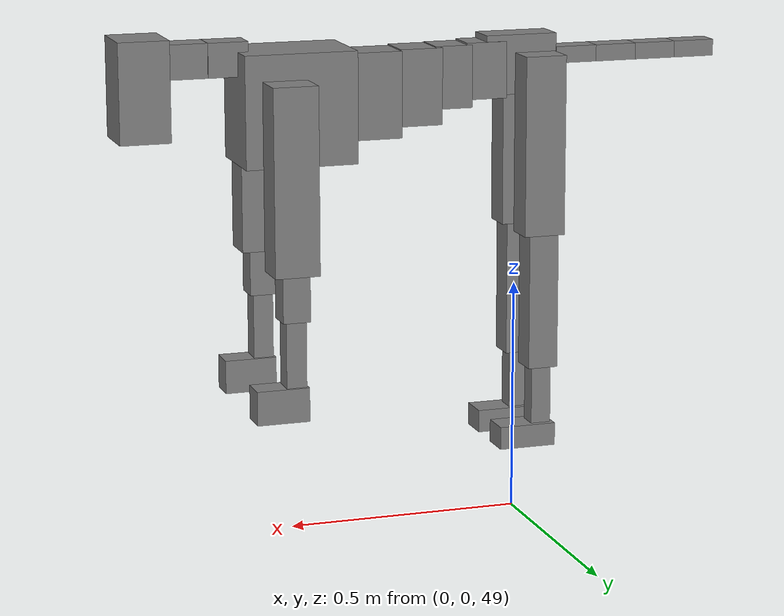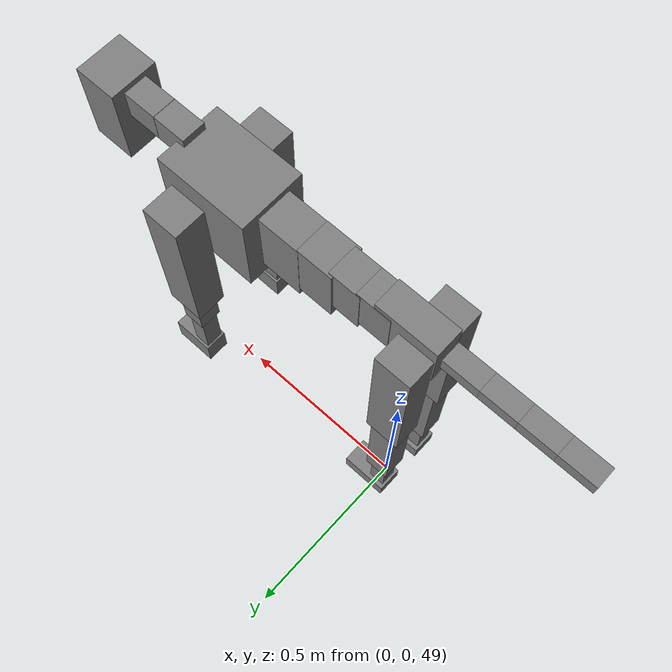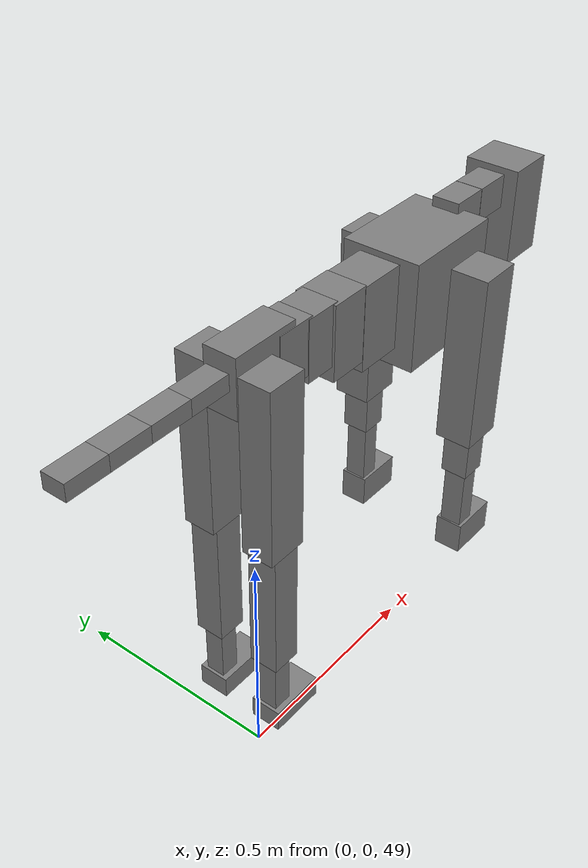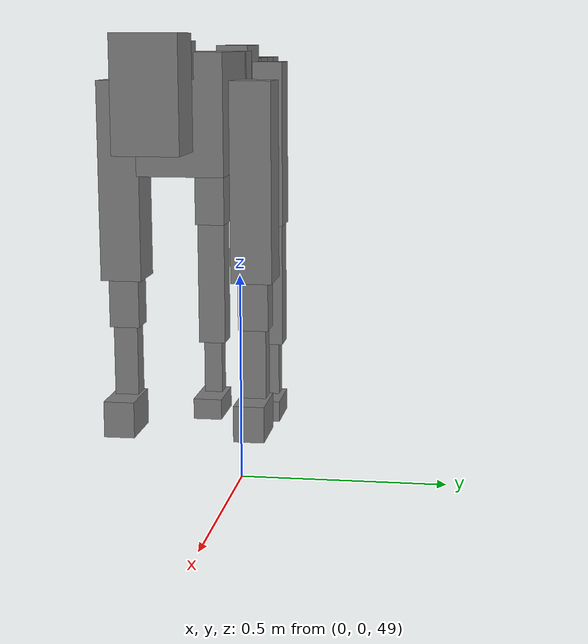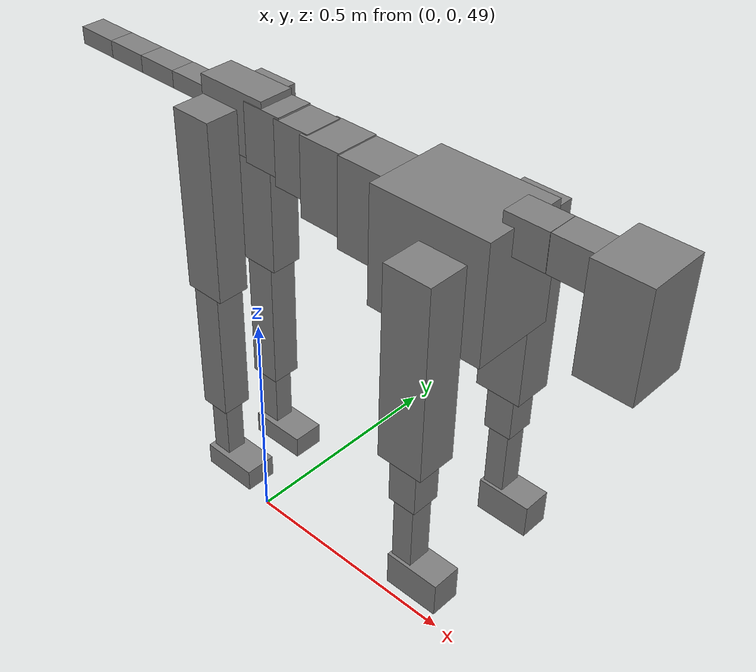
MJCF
<mujoco model="dog">

    <default>
        <joint armature="0.02" stiffness="1" damping="0.2" limited="true"/>
        <geom condim="3" friction="1 0.05 0.05" margin="0.01"/>
        <motor ctrllimited="true" ctrlrange="-1.0 1.0" forcelimited="true" gear="50"/>
    </default>

    <compiler inertiafromgeom="true" angle="radian"/>

    <option timestep="0.016" iterations="50" tolerance="1e-10" solver="Newton" jacobian="dense" cone="pyramidal"/>

    <size nconmax="20000" njmax="60000" nstack="5000000"/>
    <visual>
        <map force="0.1" zfar="30"/>
        <rgba haze="0.15 0.25 0.35 1"/>
        <quality shadowsize="2048"/>
        <global offwidth="800" offheight="800"/>
    </visual>

    <asset>
        <texture type="skybox" builtin="gradient" rgb1="0.3 0.5 0.7" rgb2="0 0 0" width="512" height="512"/>
        <texture name="texplane" type="2d" builtin="checker" rgb1=".2 .3 .4" rgb2=".1 0.15 0.2" width="512" height="512"
                 mark="cross" markrgb=".8 .8 .8"/>
        <texture name="texgeom" type="cube" builtin="flat" mark="cross" width="127" height="1278" rgb1="0.8 0.6 0.4"
                 rgb2="0.8 0.6 0.4" markrgb="1 1 1" random="0.01"/>

        <material name="matplane" reflectance="0.3" texture="texplane" texrepeat="1 1" texuniform="true"/>
        <material name="matgeom" texture="texgeom" texuniform="true" rgba="0.8 0.6 .4 1"/>
    </asset>

    <worldbody>
        <geom name="floor" pos="0 0 0" size="0 0 .25" type="plane" material="matplane" condim="3"/>

        <light directional="false" diffuse=".2 .2 .2" specular="0 0 0" pos="0 0 5" dir="0 0 -1" castshadow="false"/>
        <light mode="targetbodycom" target="torso" directional="false" diffuse=".8 .8 .8" specular="0.3 0.3 0.3"
               pos="0 0 4.0" dir="0 0 -1"/>

        <body name="root" pos="0 0 50">
            <freejoint name="root_1"/>
            <geom type="box" pos="0 0 -0.02" size="0.0774  0.0358  0.063" density="2030"/>

            <body name="spine1" pos="0.054 0 0">
                <joint name="spine1_y" axis="0 1 0" range="0 0.7" limited="true"/>
                <geom type="box" pos="0.02375 0 -0.03" size="0.04375  0.0375  0.05985" density="2030"/>

                <body name="spine2" pos="0.0612 0 0">
                    <joint name="spine2_y" axis="0 1 0" range="-0.15 0.15" limited="true"/>
                    <geom type="box" pos="0.03555  0  -0.04" size="0.04055  0.039  0.06615" density="2030"/>

                    <body name="spine3" pos="0.0730 0 0">
                        <joint name="spine3_y" axis="0 1 0" range="-0.15 0.15" limited="true"/>
                        <geom type="box" pos="0.03555  0  -0.057" size="0.04555  0.0445  0.081" density="2030"/>

                        <body name="spine4" pos="0.0780 0 0">
                            <joint name="spine4_y" axis="0 1 0" range="-0.15 0.15" limited="true"/>
                            <geom type="box" pos="0.05265  0  -0.07" size="0.05265  0.045  0.09135" density="2030"/>

                            <body name="torso" pos="0.1082 0 0">
                                <joint name="torso_y" axis="0 1 0" range="-0.15 0.15" limited="true"/>
                                <geom type="box" pos="0.11925  0  -0.085" size="0.11925  0.085  0.11745"
                                      density="2030"/>

                                <body name="neck1" pos="0.2160  0   0.0180">
                                    <joint name="neck1_y" axis="0 1 0" range="-1.2  -1" limited="true"/>
                                    <geom type="box" pos="0.0423  0  0" size="0.0423  0.03  0.036" density="2325"/>

                                    <body name="neck2" pos="0.0853  0  0">
                                        <joint name="neck2_y" axis="0 1 0" range="0.1  0" limited="true"/>
                                        <geom type="box" pos="0.0423  0  0" size="0.0423  0.03  0.036" density="2325"/>

                                        <body name="head" pos="0.0853  0  0">
                                            <joint name="head_y" axis="0 1 0" range="-0.3  -0.2" limited="true"/>
                                            <geom type="box" pos="0.0531  0  -0.055" size="0.0531  0.06  0.1044"
                                                  density="4030"/>

                                        </body>
                                    </body>
                                </body>

                                <body name="front_shoulder" pos="0.156  0   -0.0480">
                                    <joint name="front_shoulder_y" axis="0 1 0" range="-1 1.5" limited="true"/>
                                    <geom type="box" pos="0 0.13 -0.1691" size="0.0474  0.0405  0.1958" density="1158"/>
                                    <geom type="box" pos="0 -0.13 -0.1691" size="0.0474  0.0405  0.1958"
                                          density="1158"/>

                                    <body name="front_elbow" pos="0  0  -0.3383">
                                        <joint name="front_elbow_y" axis="0 1 0" range="-2 0" limited="true"/>
                                        <geom type="box" pos="0 0.13 -0.0618" size="0.0291  0.0298  0.0618"
                                              density="1081"/>
                                        <geom type="box" pos="0 -0.13 -0.0618" size="0.0291  0.0298  0.0618"
                                              density="1081"/>

                                        <body name="front_wrist" pos="0  0  -0.1236">
                                            <joint name="front_wrist_y" axis="0 1 0" range="-0.2 0" limited="true"/>
                                            <geom type="box" pos="0 0.13 -0.0769" size="0.0215  0.0239  0.0900"
                                                  density="1664"/>
                                            <geom type="box" pos="0 -0.13 -0.0769" size="0.0215  0.0239  0.0900"
                                                  density="1664"/>

                                            <body name="front_finger_end" pos="0  0  -0.1538">
                                                <joint name="front_finger_y" axis="0 1 0" range="-0.4 1"
                                                       limited="true"/>
                                                <geom type="box" pos="0.0305  0.13  -0.0210"
                                                      size="0.0559  0.0305  0.0360" density="1515"/>
                                                <geom type="box" pos="0.0305  -0.13  -0.0210"
                                                      size="0.0559  0.0305  0.0360" density="1515"/>

                                            </body>

                                        </body>
                                    </body>
                                </body>

                            </body>
                        </body>
                    </body>
                </body>
            </body>

            <body name="back_hip" pos="-0.03 0 -0.018">
                <joint name="back_hip_y" axis="0 1 0" range="-1.5 0.3" limited="true"/>
                <geom type="box" pos="0 0.07 -0.1684" size="0.0443  0.0347  0.1912" density="1154"/>
                <geom type="box" pos="0 -0.07 -0.1684" size="0.0443  0.0347  0.1912" density="1154"/>

                <body name="back_knee" pos="0  0  -0.3367">
                    <joint name="back_knee_y" axis="0 1 0" range="0 2.8" limited="true"/>
                    <geom type="box" pos="0 0.07 -0.1480" size="0.0322  0.0318  0.1635" density="1227"/>
                    <geom type="box" pos="0 -0.07 -0.1480" size="0.0322  0.0318  0.1635" density="1227"/>

                    <body name="back_ankle" pos="0  0  -0.2959">
                        <joint name="back_ankle_y" axis="0 1 0" range="-2.2 0" limited="true"/>
                        <geom type="box" pos="0 0.07 -0.0774" size="0.0214  0.0214  0.0886" density="1284"/>
                        <geom type="box" pos="0 -0.07 -0.0774" size="0.0214  0.0214  0.0886" density="1284"/>

                        <body name="back_toe_end" pos="0  0  -0.1547">
                            <joint name="back_toe_y" axis="0 1 0" range="-0.4 1" limited="true"/>
                            <geom type="box" pos="0.0336  0.07  -0.0094" size="0.0616  0.0336  0.0244" density="1515"/>
                            <geom type="box" pos="0.0336  -0.07  -0.0094" size="0.0616  0.0336  0.0244" density="1515"/>

                        </body>
                    </body>
                </body>
            </body>

            <body name="tail1" pos="-0.074 0 -0.006">
                <joint name="tail1_y" axis="0 1 0" range="-0.2 0.2" limited="true"/>
                <geom type="box" pos="-0.0536  0  0" size="0.045  0.025  0.0175" density="1587"/>

                <body name="tail2" pos="-0.09 0 0">
                    <joint name="tail2_y" axis="0 1 0" range="-0.2 0.2" limited="true"/>
                    <geom type="box" pos="-0.0536  0  0" size="0.045  0.025  0.0175" density="1587"/>

                    <body name="tail3" pos="-0.09 0 0">
                        <joint name="tail3_y" axis="0 1 0" range="-0.2 0.2" limited="true"/>
                        <geom type="box" pos="-0.0536  0  0" size="0.045  0.025  0.0175" density="1587"/>

                        <body name="tail4" pos="-0.09 0 0">
                            <joint name="tail4_y" axis="0 1 0" range="-0.2 0.2" limited="true"/>
                            <geom type="box" pos="-0.0536  0  0" size="0.045  0.025  0.0175" density="1587"/>

                        </body>
                    </body>
                </body>
            </body>
        </body>
    </worldbody>

    <actuator>
        <motor joint="spine1_y" forcerange="-150 150     "/>
        <motor joint="spine2_y" forcerange="-150 150     "/>
        <motor joint="spine3_y" forcerange="-150 150     "/>
        <motor joint="spine4_y" forcerange="-150 150     "/>
        <motor joint="torso_y" forcerange="-150 150     "/>
        <motor joint="neck1_y" forcerange="-100 100       "/>
        <motor joint="neck2_y" forcerange="-100 100       "/>
        <motor joint="head_y" forcerange="-150 150       "/>
        <motor joint="front_shoulder_y" forcerange="-187.09 183.17"/>
        <motor joint="front_elbow_y" forcerange="-189.75 126.90"/>
        <motor joint="front_wrist_y" forcerange="-90.84 100.62"/>
        <motor joint="front_finger_y" forcerange="-46.74 75.91"/>
        <motor joint="back_hip_y" forcerange="-395.31 268.00"/>
        <motor joint="back_knee_y" forcerange="-390.67 271.33"/>
        <motor joint="back_angle_y" forcerange="-171.41 70.96"/>
        <motor joint="back_toe_y" forcerange="-80.95 107.92"/>
        <motor joint="tail1_y" forcerange="-50 50     "/>
        <motor joint="tail2_y" forcerange="-50 50     "/>
        <motor joint="tail3_y" forcerange="-50 50     "/>
        <motor joint="tail4_y" forcerange="-50 50     "/>
    </actuator>
</mujoco>
